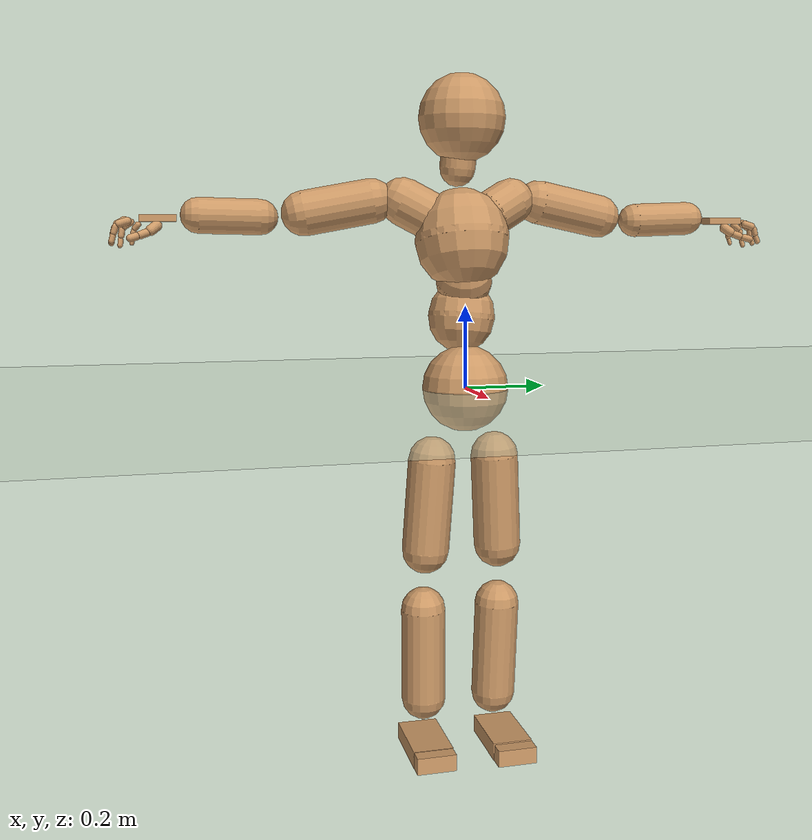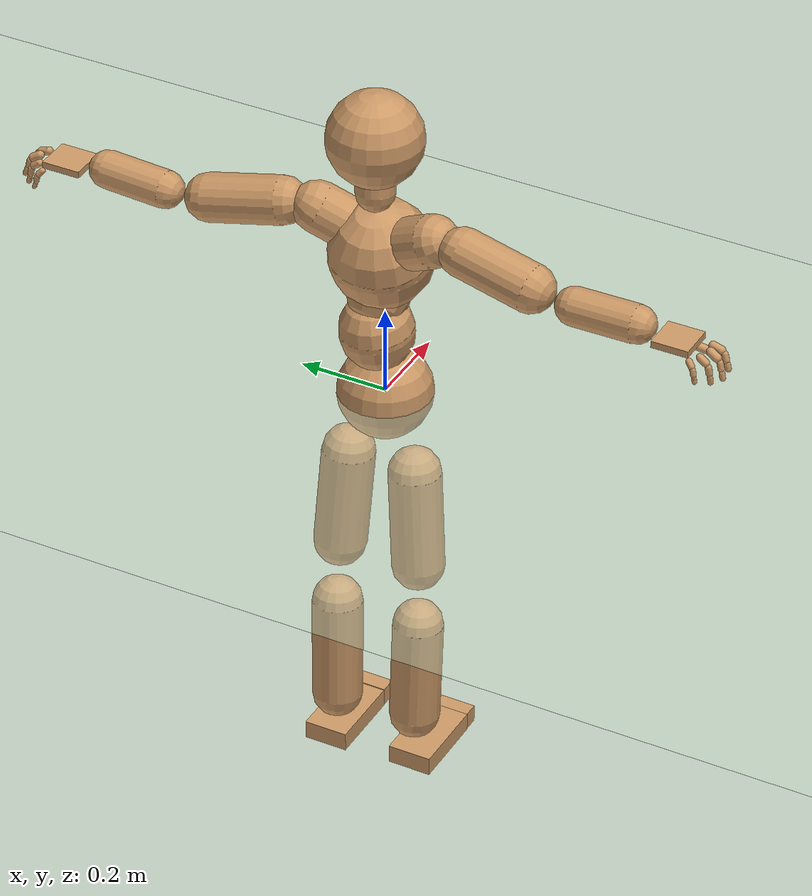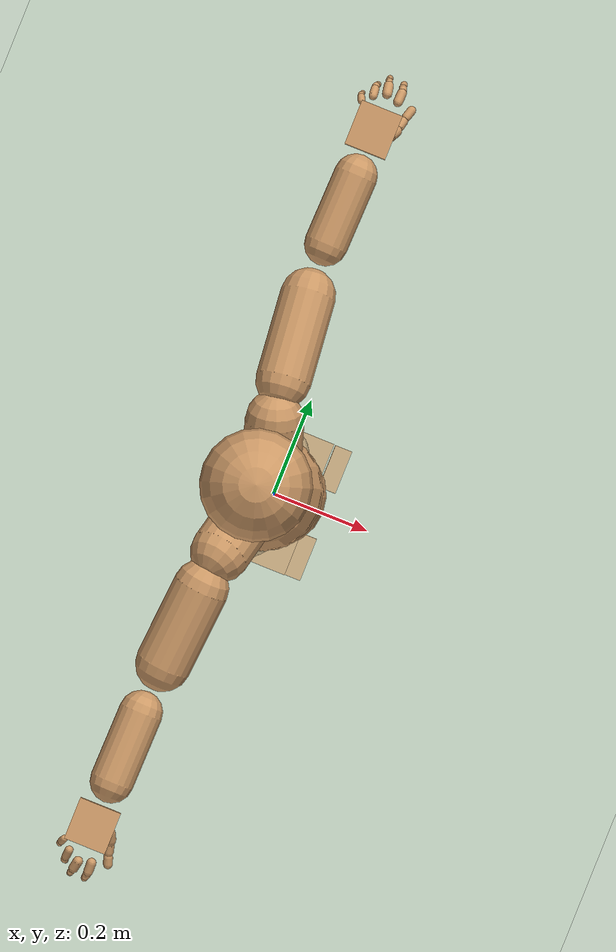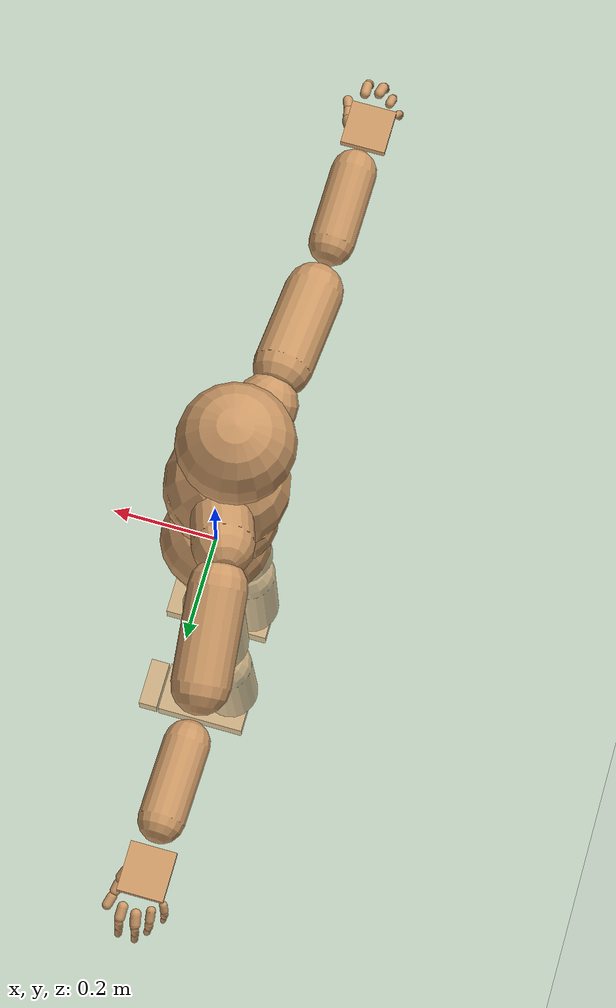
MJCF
<mujoco model="humanoid">
  <compiler coordinate="local"/>
  <default>
    <joint damping="0.0" armature="0.01" stiffness="0.0" limited="true"/>
    <geom conaffinity="1" condim="3" contype="7" margin="0.001" rgba="0.8 0.6 .4 1"/>
  </default>
  <asset>
    <texture type="skybox" builtin="gradient" rgb1=".4 .5 .6" rgb2="0 0 0" width="100" height="100"/>
    <texture builtin="flat" height="1278" mark="cross" markrgb="1 1 1" name="texgeom" random="0.01" rgb1="0.8 0.6 0.4" rgb2="0.8 0.6 0.4" type="cube" width="127"/>
    <texture builtin="checker" height="100" name="texplane" rgb1="0 0 0" rgb2="0.8 0.8 0.8" type="2d" width="100"/>
    <material name="MatPlane" reflectance="0.5" shininess="1" specular="1" texrepeat="60 60" texture="texplane"/>
    <material name="geom" texture="texgeom" texuniform="true"/>
  </asset>
  <worldbody>
    <light cutoff="100" diffuse="1 1 1" dir="-0 0 -1.3" directional="true" exponent="1" pos="0 0 1.3" specular=".1 .1 .1"/>
    <geom conaffinity="1" condim="3" name="floor" pos="0 0 0" rgba="0.8 0.9 0.8 1" size="100 100 .2" type="plane" material="MatPlane"/>
    <body name="Pelvis" pos="0 0 0">
      <freejoint name="Pelvis"/>
      <geom type="sphere" contype="1" conaffinity="1" density="4629.6296296296305" size="0.1056" pos="0.0000 0.0000 0.0000" name="Pelvis"/>
      <body name="L_Hip" pos="-0.0111 0.0758 -0.0952">
        <joint name="L_Hip_x" type="hinge" pos="0 0 0" axis="1 0 0" stiffness="800" damping="80" armature="0.02" range="-180.0000 180.0000"/>
        <joint name="L_Hip_y" type="hinge" pos="0 0 0" axis="0 1 0" stiffness="800" damping="80" armature="0.02" range="-180.0000 180.0000"/>
        <joint name="L_Hip_z" type="hinge" pos="0 0 0" axis="0 0 1" stiffness="800" damping="80" armature="0.02" range="-180.0000 180.0000"/>
        <geom type="capsule" contype="1" conaffinity="1" density="2040.816327" fromto="-0.0049 0.0044 -0.0778 -0.0195 0.0175 -0.3112" size="0.059"/>
        <body name="L_Knee" pos="-0.0244 0.0218 -0.389">
          <joint name="L_Knee_x" type="hinge" pos="0 0 0" axis="1 0 0" stiffness="800" damping="80" armature="0.02" range="-180.0000 180.0000"/>
          <joint name="L_Knee_y" type="hinge" pos="0 0 0" axis="0 1 0" stiffness="800" damping="80" armature="0.02" range="-180.0000 180.0000"/>
          <joint name="L_Knee_z" type="hinge" pos="0 0 0" axis="0 0 1" stiffness="800" damping="80" armature="0.02" range="-180.0000 180.0000"/>
          <geom type="capsule" contype="1" conaffinity="1" density="1234.567901" fromto="-0.0042 -0.0018 -0.0811 -0.0167 -0.0071 -0.3246" size="0.0564"/>
          <body name="L_Ankle" pos="-0.0209 -0.0089 -0.4057">
            <joint name="L_Ankle_x" type="hinge" pos="0 0 0" axis="1 0 0" stiffness="800" damping="80" armature="0.02" range="-180.0000 180.0000"/>
            <joint name="L_Ankle_y" type="hinge" pos="0 0 0" axis="0 1 0" stiffness="800" damping="80" armature="0.02" range="-180.0000 180.0000"/>
            <joint name="L_Ankle_z" type="hinge" pos="0 0 0" axis="0 0 1" stiffness="800" damping="80" armature="0.02" range="-180.0000 180.0000"/>
            <geom type="box" contype="1" conaffinity="1" density="1000" pos="0.0566 0.0115 -0.0234" size="0.0909 0.0502 0.0216" quat="1.0000 0.0000 0.0000 0.0000"/>
            <body name="L_Toe" pos="0.1133 0.0231 -0.0468">
              <joint name="L_Toe_x" type="hinge" pos="0 0 0" axis="1 0 0" stiffness="500" damping="50" armature="0.02" range="-180.0000 180.0000"/>
              <joint name="L_Toe_y" type="hinge" pos="0 0 0" axis="0 1 0" stiffness="500" damping="50" armature="0.02" range="-180.0000 180.0000"/>
              <joint name="L_Toe_z" type="hinge" pos="0 0 0" axis="0 0 1" stiffness="500" damping="50" armature="0.02" range="-180.0000 180.0000"/>
              <geom type="box" contype="1" conaffinity="1" density="1000" pos="0.0576 -0.0115 0.0227" size="0.0194 0.0493 0.0209" quat="1.0000 0.0000 0.0000 0.0000"/>
            </body>
          </body>
        </body>
      </body>
      <body name="R_Hip" pos="-0.0128 -0.0753 -0.1017">
        <joint name="R_Hip_x" type="hinge" pos="0 0 0" axis="1 0 0" stiffness="800" damping="80" armature="0.02" range="-180.0000 180.0000"/>
        <joint name="R_Hip_y" type="hinge" pos="0 0 0" axis="0 1 0" stiffness="800" damping="80" armature="0.02" range="-180.0000 180.0000"/>
        <joint name="R_Hip_z" type="hinge" pos="0 0 0" axis="0 0 1" stiffness="800" damping="80" armature="0.02" range="-180.0000 180.0000"/>
        <geom type="capsule" contype="1" conaffinity="1" density="2040.816327" fromto="-0.0035 -0.0051 -0.0770 -0.0140 -0.0203 -0.3079" size="0.0588"/>
        <body name="R_Knee" pos="-0.0175 -0.0254 -0.3849">
          <joint name="R_Knee_x" type="hinge" pos="0 0 0" axis="1 0 0" stiffness="800" damping="80" armature="0.02" range="-180.0000 180.0000"/>
          <joint name="R_Knee_y" type="hinge" pos="0 0 0" axis="0 1 0" stiffness="800" damping="80" armature="0.02" range="-180.0000 180.0000"/>
          <joint name="R_Knee_z" type="hinge" pos="0 0 0" axis="0 0 1" stiffness="800" damping="80" armature="0.02" range="-180.0000 180.0000"/>
          <geom type="capsule" contype="1" conaffinity="1" density="1234.567901" fromto="-0.0035 0.0006 -0.0794 -0.0139 0.0026 -0.3175" size="0.0564"/>
          <body name="R_Ankle" pos="-0.0174 0.0032 -0.3968">
            <joint name="R_Ankle_x" type="hinge" pos="0 0 0" axis="1 0 0" stiffness="800" damping="80" armature="0.02" range="-180.0000 180.0000"/>
            <joint name="R_Ankle_y" type="hinge" pos="0 0 0" axis="0 1 0" stiffness="800" damping="80" armature="0.02" range="-180.0000 180.0000"/>
            <joint name="R_Ankle_z" type="hinge" pos="0 0 0" axis="0 0 1" stiffness="800" damping="80" armature="0.02" range="-180.0000 180.0000"/>
            <geom type="box" contype="1" conaffinity="1" density="1000" pos="0.0535 -0.0091 -0.0250" size="0.0909 0.0502 0.0216" quat="1.0000 0.0000 0.0000 0.0000"/>
            <body name="R_Toe" pos="0.1071 -0.0181 -0.05">
              <joint name="R_Toe_x" type="hinge" pos="0 0 0" axis="1 0 0" stiffness="500" damping="50" armature="0.02" range="-180.0000 180.0000"/>
              <joint name="R_Toe_y" type="hinge" pos="0 0 0" axis="0 1 0" stiffness="500" damping="50" armature="0.02" range="-180.0000 180.0000"/>
              <joint name="R_Toe_z" type="hinge" pos="0 0 0" axis="0 0 1" stiffness="500" damping="50" armature="0.02" range="-180.0000 180.0000"/>
              <geom type="box" contype="1" conaffinity="1" density="1000" pos="0.0545 0.0091 0.0243" size="0.0194 0.0493 0.0209" quat="1.0000 0.0000 0.0000 0.0000"/>
            </body>
          </body>
        </body>
      </body>
      <body name="Torso" pos="-0.0311 -0.0057 0.111">
        <joint name="Torso_x" type="hinge" pos="0 0 0" axis="1 0 0" stiffness="1000" damping="100" armature="0.02" range="-180.0000 180.0000"/>
        <joint name="Torso_y" type="hinge" pos="0 0 0" axis="0 1 0" stiffness="1000" damping="100" armature="0.02" range="-180.0000 180.0000"/>
        <joint name="Torso_z" type="hinge" pos="0 0 0" axis="0 0 1" stiffness="1000" damping="100" armature="0.02" range="-180.0000 180.0000"/>
        <geom type="capsule" contype="1" conaffinity="1" density="1100" fromto="-0.0054 0.0055 0.0570 -0.0066 0.0067 0.0697" size="0.0817"/>
        <body name="Spine" pos="-0.012 0.0122 0.1267">
          <joint name="Spine_x" type="hinge" pos="0 0 0" axis="1 0 0" stiffness="1000" damping="100" armature="0.02" range="-180.0000 180.0000"/>
          <joint name="Spine_y" type="hinge" pos="0 0 0" axis="0 1 0" stiffness="1000" damping="100" armature="0.02" range="-180.0000 180.0000"/>
          <joint name="Spine_z" type="hinge" pos="0 0 0" axis="0 0 1" stiffness="1000" damping="100" armature="0.02" range="-180.0000 180.0000"/>
          <geom type="capsule" contype="1" conaffinity="1" density="1100" fromto="0.0179 -0.0033 0.0207 0.0218 -0.0040 0.0253" size="0.0686"/>
          <body name="Chest" pos="0.0397 -0.0073 0.046">
            <joint name="Chest_x" type="hinge" pos="0 0 0" axis="1 0 0" stiffness="1000" damping="100" armature="0.02" range="-180.0000 180.0000"/>
            <joint name="Chest_y" type="hinge" pos="0 0 0" axis="0 1 0" stiffness="1000" damping="100" armature="0.02" range="-180.0000 180.0000"/>
            <joint name="Chest_z" type="hinge" pos="0 0 0" axis="0 0 1" stiffness="1000" damping="100" armature="0.02" range="-180.0000 180.0000"/>
            <geom type="capsule" contype="1" conaffinity="1" density="1100" fromto="-0.0173 -0.0012 0.0701 -0.0212 -0.0015 0.0857" size="0.1145"/>
            <body name="Neck" pos="-0.0552 -0.006 0.2172">
              <joint name="Neck_x" type="hinge" pos="0 0 0" axis="1 0 0" stiffness="500" damping="50" armature="0.02" range="-180.0000 180.0000"/>
              <joint name="Neck_y" type="hinge" pos="0 0 0" axis="0 1 0" stiffness="500" damping="50" armature="0.02" range="-180.0000 180.0000"/>
              <joint name="Neck_z" type="hinge" pos="0 0 0" axis="0 0 1" stiffness="500" damping="50" armature="0.02" range="-180.0000 180.0000"/>
              <geom type="capsule" contype="1" conaffinity="1" density="1000" fromto="0.0033 0.0019 0.0295 0.0132 0.0076 0.1180" size="0.0437"/>
              <body name="Head" pos="0.0165 0.0095 0.1475">
                <joint name="Head_x" type="hinge" pos="0 0 0" axis="1 0 0" stiffness="500" damping="50" armature="0.02" range="-180.0000 180.0000"/>
                <joint name="Head_y" type="hinge" pos="0 0 0" axis="0 1 0" stiffness="500" damping="50" armature="0.02" range="-180.0000 180.0000"/>
                <joint name="Head_z" type="hinge" pos="0 0 0" axis="0 0 1" stiffness="500" damping="50" armature="0.02" range="-180.0000 180.0000"/>
                <geom type="sphere" contype="1" conaffinity="1" density="1000" size="0.1054" pos="0.0000 0.0000 0.0000" name="Head"/>
              </body>
            </body>
            <body name="L_Thorax" pos="-0.0266 0.0574 0.1273">
              <joint name="L_Thorax_x" type="hinge" pos="0 0 0" axis="1 0 0" stiffness="500" damping="50" armature="0.02" range="-180.0000 180.0000"/>
              <joint name="L_Thorax_y" type="hinge" pos="0 0 0" axis="0 1 0" stiffness="500" damping="50" armature="0.02" range="-180.0000 180.0000"/>
              <joint name="L_Thorax_z" type="hinge" pos="0 0 0" axis="0 0 1" stiffness="500" damping="50" armature="0.02" range="-180.0000 180.0000"/>
              <geom type="capsule" contype="1" conaffinity="1" density="1000" fromto="-0.0063 0.0186 0.0105 -0.0250 0.0743 0.0420" size="0.0564"/>
              <body name="L_Shoulder" pos="-0.0313 0.0928 0.0525">
                <joint name="L_Shoulder_x" type="hinge" pos="0 0 0" axis="1 0 0" stiffness="500" damping="50" armature="0.02" range="-180.0000 180.0000"/>
                <joint name="L_Shoulder_y" type="hinge" pos="0 0 0" axis="0 1 0" stiffness="500" damping="50" armature="0.02" range="-180.0000 180.0000"/>
                <joint name="L_Shoulder_z" type="hinge" pos="0 0 0" axis="0 0 1" stiffness="500" damping="50" armature="0.02" range="-180.0000 180.0000"/>
                <geom type="capsule" contype="1" conaffinity="1" density="1000" fromto="-0.0057 0.0560 -0.0112 -0.0228 0.2241 -0.0448" size="0.0533"/>
                <body name="L_Elbow" pos="-0.0285 0.2802 -0.056">
                  <joint name="L_Elbow_x" type="hinge" pos="0 0 0" axis="1 0 0" stiffness="500" damping="50" armature="0.02" range="-180.0000 180.0000"/>
                  <joint name="L_Elbow_y" type="hinge" pos="0 0 0" axis="0 1 0" stiffness="500" damping="50" armature="0.02" range="-180.0000 180.0000"/>
                  <joint name="L_Elbow_z" type="hinge" pos="0 0 0" axis="0 0 1" stiffness="500" damping="50" armature="0.02" range="-180.0000 180.0000"/>
                  <geom type="capsule" contype="1" conaffinity="1" density="1000" fromto="0.0012 0.0473 0.0019 0.0047 0.1894 0.0075" size="0.0418"/>
                  <body name="L_Wrist" pos="0.0059 0.2367 0.0094">
                    <joint name="L_Wrist_x" type="hinge" pos="0 0 0" axis="1 0 0" stiffness="300" damping="30" armature="0.02" range="-180.0000 180.0000"/>
                    <joint name="L_Wrist_y" type="hinge" pos="0 0 0" axis="0 1 0" stiffness="300" damping="30" armature="0.02" range="-180.0000 180.0000"/>
                    <joint name="L_Wrist_z" type="hinge" pos="0 0 0" axis="0 0 1" stiffness="300" damping="30" armature="0.02" range="-180.0000 180.0000"/>
                    <geom type="box" contype="1" conaffinity="1" density="1000" pos="-0.0022 0.0456 -0.0084" size="0.0414 0.0444 0.0076" quat="1.0000 0.0000 0.0000 0.0000"/>
                    <body name="L_Index1" pos="0.0212 0.107 -0.0141">
                      <joint name="L_Index1_x" type="hinge" pos="0 0 0" axis="1 0 0" stiffness="100" damping="10" armature="0.02" range="-55.6250 55.6250"/>
                      <joint name="L_Index1_y" type="hinge" pos="0 0 0" axis="0 1 0" stiffness="100" damping="10" armature="0.02" range="-5.6250 5.6250"/>
                      <joint name="L_Index1_z" type="hinge" pos="0 0 0" axis="0 0 1" stiffness="100" damping="10" armature="0.02" range="-5.6250 5.6250"/>
                      <geom type="capsule" contype="1" conaffinity="1" density="1000" fromto="0.0001 0.0061 -0.0021 0.0006 0.0246 -0.0082" size="0.0093"/>
                      <body name="L_Index2" pos="0.0007 0.0307 -0.0103">
                        <joint name="L_Index2_x" type="hinge" pos="0 0 0" axis="1 0 0" stiffness="100" damping="10" armature="0.02" range="-55.6250 55.6250"/>
                        <joint name="L_Index2_y" type="hinge" pos="0 0 0" axis="0 1 0" stiffness="100" damping="10" armature="0.02" range="-5.6250 5.6250"/>
                        <joint name="L_Index2_z" type="hinge" pos="0 0 0" axis="0 0 1" stiffness="100" damping="10" armature="0.02" range="-5.6250 5.6250"/>
                        <geom type="capsule" contype="1" conaffinity="1" density="1000" fromto="-0.0004 0.0015 -0.0043 -0.0017 0.0059 -0.0170" size="0.0076"/>
                        <body name="L_Index3" pos="-0.0021 0.0074 -0.0213">
                          <joint name="L_Index3_x" type="hinge" pos="0 0 0" axis="1 0 0" stiffness="100" damping="10" armature="0.02" range="-90.0000 5.6250"/>
                          <joint name="L_Index3_y" type="hinge" pos="0 0 0" axis="0 1 0" stiffness="100" damping="10" armature="0.02" range="-5.6250 5.6250"/>
                          <joint name="L_Index3_z" type="hinge" pos="0 0 0" axis="0 0 1" stiffness="100" damping="10" armature="0.02" range="-5.6250 5.6250"/>
                          <geom type="capsule" contype="1" conaffinity="1" density="1000" fromto="-0.0000 0.0019 -0.0039 -0.0001 0.0075 -0.0154" size="0.0067"/>
                        </body>
                      </body>
                    </body>
                    <body name="L_Middle1" pos="-0.0028 0.1143 -0.0116">
                      <joint name="L_Middle1_x" type="hinge" pos="0 0 0" axis="1 0 0" stiffness="100" damping="10" armature="0.02" range="-55.6250 55.6250"/>
                      <joint name="L_Middle1_y" type="hinge" pos="0 0 0" axis="0 1 0" stiffness="100" damping="10" armature="0.02" range="-5.6250 5.6250"/>
                      <joint name="L_Middle1_z" type="hinge" pos="0 0 0" axis="0 0 1" stiffness="100" damping="10" armature="0.02" range="-5.6250 5.6250"/>
                      <geom type="capsule" contype="1" conaffinity="1" density="1000" fromto="-0.0010 0.0054 -0.0029 -0.0039 0.0214 -0.0116" size="0.0096"/>
                      <body name="L_Middle2" pos="-0.0048 0.0268 -0.0145">
                        <joint name="L_Middle2_x" type="hinge" pos="0 0 0" axis="1 0 0" stiffness="100" damping="10" armature="0.02" range="-55.6250 55.6250"/>
                        <joint name="L_Middle2_y" type="hinge" pos="0 0 0" axis="0 1 0" stiffness="100" damping="10" armature="0.02" range="-5.6250 5.6250"/>
                        <joint name="L_Middle2_z" type="hinge" pos="0 0 0" axis="0 0 1" stiffness="100" damping="10" armature="0.02" range="-5.6250 5.6250"/>
                        <geom type="capsule" contype="1" conaffinity="1" density="1000" fromto="-0.0004 0.0013 -0.0046 -0.0017 0.0051 -0.0184" size="0.0071"/>
                        <body name="L_Middle3" pos="-0.0021 0.0063 -0.023">
                          <joint name="L_Middle3_x" type="hinge" pos="0 0 0" axis="1 0 0" stiffness="100" damping="10" armature="0.02" range="-90.0000 5.6250"/>
                          <joint name="L_Middle3_y" type="hinge" pos="0 0 0" axis="0 1 0" stiffness="100" damping="10" armature="0.02" range="-5.6250 5.6250"/>
                          <joint name="L_Middle3_z" type="hinge" pos="0 0 0" axis="0 0 1" stiffness="100" damping="10" armature="0.02" range="-5.6250 5.6250"/>
                          <geom type="capsule" contype="1" conaffinity="1" density="1000" fromto="-0.0000 0.0017 -0.0042 -0.0001 0.0067 -0.0168" size="0.0064"/>
                        </body>
                      </body>
                    </body>
                    <body name="L_Pinky1" pos="-0.0428 0.088 -0.0204">
                      <joint name="L_Pinky1_x" type="hinge" pos="0 0 0" axis="1 0 0" stiffness="100" damping="10" armature="0.02" range="-55.6250 55.6250"/>
                      <joint name="L_Pinky1_y" type="hinge" pos="0 0 0" axis="0 1 0" stiffness="100" damping="10" armature="0.02" range="-5.6250 5.6250"/>
                      <joint name="L_Pinky1_z" type="hinge" pos="0 0 0" axis="0 0 1" stiffness="100" damping="10" armature="0.02" range="-5.6250 5.6250"/>
                      <geom type="capsule" contype="1" conaffinity="1" density="1000" fromto="-0.0012 0.0024 -0.0028 -0.0047 0.0097 -0.0110" size="0.0071"/>
                      <body name="L_Pinky2" pos="-0.0058 0.0122 -0.0138">
                        <joint name="L_Pinky2_x" type="hinge" pos="0 0 0" axis="1 0 0" stiffness="100" damping="10" armature="0.02" range="-55.6250 55.6250"/>
                        <joint name="L_Pinky2_y" type="hinge" pos="0 0 0" axis="0 1 0" stiffness="100" damping="10" armature="0.02" range="-5.6250 5.6250"/>
                        <joint name="L_Pinky2_z" type="hinge" pos="0 0 0" axis="0 0 1" stiffness="100" damping="10" armature="0.02" range="-5.6250 5.6250"/>
                        <geom type="capsule" contype="1" conaffinity="1" density="1000" fromto="-0.0001 0.0008 -0.0037 -0.0005 0.0033 -0.0149" size="0.0064"/>
                        <body name="L_Pinky3" pos="-0.0006 0.0042 -0.0186">
                          <joint name="L_Pinky3_x" type="hinge" pos="0 0 0" axis="1 0 0" stiffness="100" damping="10" armature="0.02" range="-90.0000 5.6250"/>
                          <joint name="L_Pinky3_y" type="hinge" pos="0 0 0" axis="0 1 0" stiffness="100" damping="10" armature="0.02" range="-5.6250 5.6250"/>
                          <joint name="L_Pinky3_z" type="hinge" pos="0 0 0" axis="0 0 1" stiffness="100" damping="10" armature="0.02" range="-5.6250 5.6250"/>
                          <geom type="capsule" contype="1" conaffinity="1" density="1000" fromto="0.0003 0.0012 -0.0033 0.0011 0.0049 -0.0133" size="0.0051"/>
                        </body>
                      </body>
                    </body>
                    <body name="L_Ring1" pos="-0.0267 0.1018 -0.0147">
                      <joint name="L_Ring1_x" type="hinge" pos="0 0 0" axis="1 0 0" stiffness="100" damping="10" armature="0.02" range="-55.6250 55.6250"/>
                      <joint name="L_Ring1_y" type="hinge" pos="0 0 0" axis="0 1 0" stiffness="100" damping="10" armature="0.02" range="-5.6250 5.6250"/>
                      <joint name="L_Ring1_z" type="hinge" pos="0 0 0" axis="0 0 1" stiffness="100" damping="10" armature="0.02" range="-5.6250 5.6250"/>
                      <geom type="capsule" contype="1" conaffinity="1" density="1000" fromto="-0.0005 0.0048 -0.0032 -0.0019 0.0191 -0.0126" size="0.0082"/>
                      <body name="L_Ring2" pos="-0.0023 0.0239 -0.0158">
                        <joint name="L_Ring2_x" type="hinge" pos="0 0 0" axis="1 0 0" stiffness="100" damping="10" armature="0.02" range="-55.6250 55.6250"/>
                        <joint name="L_Ring2_y" type="hinge" pos="0 0 0" axis="0 1 0" stiffness="100" damping="10" armature="0.02" range="-5.6250 5.6250"/>
                        <joint name="L_Ring2_z" type="hinge" pos="0 0 0" axis="0 0 1" stiffness="100" damping="10" armature="0.02" range="-5.6250 5.6250"/>
                        <geom type="capsule" contype="1" conaffinity="1" density="1000" fromto="0.0001 0.0009 -0.0047 0.0003 0.0036 -0.0187" size="0.0073"/>
                        <body name="L_Ring3" pos="0.0004 0.0045 -0.0234">
                          <joint name="L_Ring3_x" type="hinge" pos="0 0 0" axis="1 0 0" stiffness="100" damping="10" armature="0.02" range="-90.0000 5.6250"/>
                          <joint name="L_Ring3_y" type="hinge" pos="0 0 0" axis="0 1 0" stiffness="100" damping="10" armature="0.02" range="-5.6250 5.6250"/>
                          <joint name="L_Ring3_z" type="hinge" pos="0 0 0" axis="0 0 1" stiffness="100" damping="10" armature="0.02" range="-5.6250 5.6250"/>
                          <geom type="capsule" contype="1" conaffinity="1" density="1000" fromto="0.0005 0.0013 -0.0043 0.0019 0.0052 -0.0171" size="0.0061"/>
                        </body>
                      </body>
                    </body>
                    <body name="L_Thumb1" pos="0.0287 0.0444 -0.023">
                      <joint name="L_Thumb1_x" type="hinge" pos="0 0 0" axis="1 0 0" stiffness="100" damping="10" armature="0.02" range="-55.6250 55.6250"/>
                      <joint name="L_Thumb1_y" type="hinge" pos="0 0 0" axis="0 1 0" stiffness="100" damping="10" armature="0.02" range="-55.6250 55.6250"/>
                      <joint name="L_Thumb1_z" type="hinge" pos="0 0 0" axis="0 0 1" stiffness="100" damping="10" armature="0.02" range="-55.6250 55.6250"/>
                      <geom type="capsule" contype="1" conaffinity="1" density="1000" fromto="0.0022 0.0044 -0.0035 0.0089 0.0176 -0.0139" size="0.0123"/>
                      <body name="L_Thumb2" pos="0.0112 0.022 -0.0174">
                        <joint name="L_Thumb2_x" type="hinge" pos="0 0 0" axis="1 0 0" stiffness="100" damping="10" armature="0.02" range="-5.6250 5.6250"/>
                        <joint name="L_Thumb2_y" type="hinge" pos="0 0 0" axis="0 1 0" stiffness="100" damping="10" armature="0.02" range="-5.6250 5.6250"/>
                        <joint name="L_Thumb2_z" type="hinge" pos="0 0 0" axis="0 0 1" stiffness="100" damping="10" armature="0.02" range="-5.6250 5.6250"/>
                        <geom type="capsule" contype="1" conaffinity="1" density="1000" fromto="0.0011 0.0048 -0.0018 0.0044 0.0191 -0.0071" size="0.0093"/>
                        <body name="L_Thumb3" pos="0.0055 0.0239 -0.0088">
                          <joint name="L_Thumb3_x" type="hinge" pos="0 0 0" axis="1 0 0" stiffness="100" damping="10" armature="0.02" range="-90.0000 5.6250"/>
                          <joint name="L_Thumb3_y" type="hinge" pos="0 0 0" axis="0 1 0" stiffness="100" damping="10" armature="0.02" range="-5.6250 5.6250"/>
                          <joint name="L_Thumb3_z" type="hinge" pos="0 0 0" axis="0 0 1" stiffness="100" damping="10" armature="0.02" range="-5.6250 5.6250"/>
                          <geom type="capsule" contype="1" conaffinity="1" density="1000" fromto="0.0015 0.0052 -0.0014 0.0060 0.0207 -0.0055" size="0.0088"/>
                        </body>
                      </body>
                    </body>
                  </body>
                </body>
              </body>
            </body>
            <body name="R_Thorax" pos="-0.0337 -0.0595 0.1228">
              <joint name="R_Thorax_x" type="hinge" pos="0 0 0" axis="1 0 0" stiffness="500" damping="50" armature="0.02" range="-180.0000 180.0000"/>
              <joint name="R_Thorax_y" type="hinge" pos="0 0 0" axis="0 1 0" stiffness="500" damping="50" armature="0.02" range="-180.0000 180.0000"/>
              <joint name="R_Thorax_z" type="hinge" pos="0 0 0" axis="0 0 1" stiffness="500" damping="50" armature="0.02" range="-180.0000 180.0000"/>
              <geom type="capsule" contype="1" conaffinity="1" density="1000" fromto="-0.0048 -0.0201 0.0110 -0.0192 -0.0804 0.0439" size="0.0576"/>
              <body name="R_Shoulder" pos="-0.024 -0.1005 0.0549">
                <joint name="R_Shoulder_x" type="hinge" pos="0 0 0" axis="1 0 0" stiffness="500" damping="50" armature="0.02" range="-180.0000 180.0000"/>
                <joint name="R_Shoulder_y" type="hinge" pos="0 0 0" axis="0 1 0" stiffness="500" damping="50" armature="0.02" range="-180.0000 180.0000"/>
                <joint name="R_Shoulder_z" type="hinge" pos="0 0 0" axis="0 0 1" stiffness="500" damping="50" armature="0.02" range="-180.0000 180.0000"/>
                <geom type="capsule" contype="1" conaffinity="1" density="1000" fromto="-0.0042 -0.0541 -0.0101 -0.0167 -0.2164 -0.0402" size="0.0538"/>
                <body name="R_Elbow" pos="-0.0208 -0.2705 -0.0503">
                  <joint name="R_Elbow_x" type="hinge" pos="0 0 0" axis="1 0 0" stiffness="500" damping="50" armature="0.02" range="-180.0000 180.0000"/>
                  <joint name="R_Elbow_y" type="hinge" pos="0 0 0" axis="0 1 0" stiffness="500" damping="50" armature="0.02" range="-180.0000 180.0000"/>
                  <joint name="R_Elbow_z" type="hinge" pos="0 0 0" axis="0 0 1" stiffness="500" damping="50" armature="0.02" range="-180.0000 180.0000"/>
                  <geom type="capsule" contype="1" conaffinity="1" density="1000" fromto="-0.0008 -0.0474 0.0010 -0.0030 -0.1897 0.0040" size="0.042"/>
                  <body name="R_Wrist" pos="-0.0038 -0.2372 0.005">
                    <joint name="R_Wrist_x" type="hinge" pos="0 0 0" axis="1 0 0" stiffness="300" damping="30" armature="0.02" range="-180.0000 180.0000"/>
                    <joint name="R_Wrist_y" type="hinge" pos="0 0 0" axis="0 1 0" stiffness="300" damping="30" armature="0.02" range="-180.0000 180.0000"/>
                    <joint name="R_Wrist_z" type="hinge" pos="0 0 0" axis="0 0 1" stiffness="300" damping="30" armature="0.02" range="-180.0000 180.0000"/>
                    <geom type="box" contype="1" conaffinity="1" density="1000" pos="-0.0014 -0.0449 -0.0080" size="0.0414 0.0416 0.0078" quat="1.0000 0.0000 0.0000 0.0000"/>
                    <body name="R_Index1" pos="0.0229 -0.1057 -0.0132">
                      <joint name="R_Index1_x" type="hinge" pos="0 0 0" axis="1 0 0" stiffness="100" damping="10" armature="0.02" range="-55.6250 55.6250"/>
                      <joint name="R_Index1_y" type="hinge" pos="0 0 0" axis="0 1 0" stiffness="100" damping="10" armature="0.02" range="-5.6250 5.6250"/>
                      <joint name="R_Index1_z" type="hinge" pos="0 0 0" axis="0 0 1" stiffness="100" damping="10" armature="0.02" range="-5.6250 5.6250"/>
                      <geom type="capsule" contype="1" conaffinity="1" density="1000" fromto="0.0001 -0.0061 -0.0021 0.0006 -0.0246 -0.0082" size="0.0093"/>
                      <body name="R_Index2" pos="0.0007 -0.0307 -0.0103">
                        <joint name="R_Index2_x" type="hinge" pos="0 0 0" axis="1 0 0" stiffness="100" damping="10" armature="0.02" range="-55.6250 55.6250"/>
                        <joint name="R_Index2_y" type="hinge" pos="0 0 0" axis="0 1 0" stiffness="100" damping="10" armature="0.02" range="-5.6250 5.6250"/>
                        <joint name="R_Index2_z" type="hinge" pos="0 0 0" axis="0 0 1" stiffness="100" damping="10" armature="0.02" range="-5.6250 5.6250"/>
                        <geom type="capsule" contype="1" conaffinity="1" density="1000" fromto="-0.0004 -0.0015 -0.0043 -0.0017 -0.0059 -0.0170" size="0.0076"/>
                        <body name="R_Index3" pos="-0.0021 -0.0074 -0.0213">
                          <joint name="R_Index3_x" type="hinge" pos="0 0 0" axis="1 0 0" stiffness="100" damping="10" armature="0.02" range="-5.6250 90.0000"/>
                          <joint name="R_Index3_y" type="hinge" pos="0 0 0" axis="0 1 0" stiffness="100" damping="10" armature="0.02" range="-5.6250 5.6250"/>
                          <joint name="R_Index3_z" type="hinge" pos="0 0 0" axis="0 0 1" stiffness="100" damping="10" armature="0.02" range="-5.6250 5.6250"/>
                          <geom type="capsule" contype="1" conaffinity="1" density="1000" fromto="-0.0000 -0.0011 -0.0039 -0.0001 -0.0043 -0.0154" size="0.0068"/>
                        </body>
                      </body>
                    </body>
                    <body name="R_Middle1" pos="-0.0011 -0.113 -0.0107">
                      <joint name="R_Middle1_x" type="hinge" pos="0 0 0" axis="1 0 0" stiffness="100" damping="10" armature="0.02" range="-55.6250 55.6250"/>
                      <joint name="R_Middle1_y" type="hinge" pos="0 0 0" axis="0 1 0" stiffness="100" damping="10" armature="0.02" range="-5.6250 5.6250"/>
                      <joint name="R_Middle1_z" type="hinge" pos="0 0 0" axis="0 0 1" stiffness="100" damping="10" armature="0.02" range="-5.6250 5.6250"/>
                      <geom type="capsule" contype="1" conaffinity="1" density="1000" fromto="-0.0010 -0.0054 -0.0029 -0.0039 -0.0214 -0.0116" size="0.0096"/>
                      <body name="R_Middle2" pos="-0.0048 -0.0268 -0.0145">
                        <joint name="R_Middle2_x" type="hinge" pos="0 0 0" axis="1 0 0" stiffness="100" damping="10" armature="0.02" range="-55.6250 55.6250"/>
                        <joint name="R_Middle2_y" type="hinge" pos="0 0 0" axis="0 1 0" stiffness="100" damping="10" armature="0.02" range="-5.6250 5.6250"/>
                        <joint name="R_Middle2_z" type="hinge" pos="0 0 0" axis="0 0 1" stiffness="100" damping="10" armature="0.02" range="-5.6250 5.6250"/>
                        <geom type="capsule" contype="1" conaffinity="1" density="1000" fromto="-0.0004 -0.0013 -0.0046 -0.0017 -0.0051 -0.0184" size="0.0071"/>
                        <body name="R_Middle3" pos="-0.0021 -0.0063 -0.023">
                          <joint name="R_Middle3_x" type="hinge" pos="0 0 0" axis="1 0 0" stiffness="100" damping="10" armature="0.02" range="-5.6250 90.0000"/>
                          <joint name="R_Middle3_y" type="hinge" pos="0 0 0" axis="0 1 0" stiffness="100" damping="10" armature="0.02" range="-5.6250 5.6250"/>
                          <joint name="R_Middle3_z" type="hinge" pos="0 0 0" axis="0 0 1" stiffness="100" damping="10" armature="0.02" range="-5.6250 5.6250"/>
                          <geom type="capsule" contype="1" conaffinity="1" density="1000" fromto="-0.0000 -0.0009 -0.0042 -0.0001 -0.0035 -0.0168" size="0.0064"/>
                        </body>
                      </body>
                    </body>
                    <body name="R_Pinky1" pos="-0.0411 -0.0867 -0.0196">
                      <joint name="R_Pinky1_x" type="hinge" pos="0 0 0" axis="1 0 0" stiffness="100" damping="10" armature="0.02" range="-55.6250 55.6250"/>
                      <joint name="R_Pinky1_y" type="hinge" pos="0 0 0" axis="0 1 0" stiffness="100" damping="10" armature="0.02" range="-5.6250 5.6250"/>
                      <joint name="R_Pinky1_z" type="hinge" pos="0 0 0" axis="0 0 1" stiffness="100" damping="10" armature="0.02" range="-5.6250 5.6250"/>
                      <geom type="capsule" contype="1" conaffinity="1" density="1000" fromto="-0.0012 -0.0024 -0.0028 -0.0047 -0.0097 -0.0110" size="0.0071"/>
                      <body name="R_Pinky2" pos="-0.0058 -0.0122 -0.0138">
                        <joint name="R_Pinky2_x" type="hinge" pos="0 0 0" axis="1 0 0" stiffness="100" damping="10" armature="0.02" range="-55.6250 55.6250"/>
                        <joint name="R_Pinky2_y" type="hinge" pos="0 0 0" axis="0 1 0" stiffness="100" damping="10" armature="0.02" range="-5.6250 5.6250"/>
                        <joint name="R_Pinky2_z" type="hinge" pos="0 0 0" axis="0 0 1" stiffness="100" damping="10" armature="0.02" range="-5.6250 5.6250"/>
                        <geom type="capsule" contype="1" conaffinity="1" density="1000" fromto="-0.0001 -0.0008 -0.0037 -0.0005 -0.0033 -0.0149" size="0.0064"/>
                        <body name="R_Pinky3" pos="-0.0006 -0.0042 -0.0186">
                          <joint name="R_Pinky3_x" type="hinge" pos="0 0 0" axis="1 0 0" stiffness="100" damping="10" armature="0.02" range="-5.6250 90.0000"/>
                          <joint name="R_Pinky3_y" type="hinge" pos="0 0 0" axis="0 1 0" stiffness="100" damping="10" armature="0.02" range="-5.6250 5.6250"/>
                          <joint name="R_Pinky3_z" type="hinge" pos="0 0 0" axis="0 0 1" stiffness="100" damping="10" armature="0.02" range="-5.6250 5.6250"/>
                          <geom type="capsule" contype="1" conaffinity="1" density="1000" fromto="0.0003 -0.0004 -0.0033 0.0011 -0.0017 -0.0133" size="0.0052"/>
                        </body>
                      </body>
                    </body>
                    <body name="R_Ring1" pos="-0.025 -0.1005 -0.0139">
                      <joint name="R_Ring1_x" type="hinge" pos="0 0 0" axis="1 0 0" stiffness="100" damping="10" armature="0.02" range="-55.6250 55.6250"/>
                      <joint name="R_Ring1_y" type="hinge" pos="0 0 0" axis="0 1 0" stiffness="100" damping="10" armature="0.02" range="-5.6250 5.6250"/>
                      <joint name="R_Ring1_z" type="hinge" pos="0 0 0" axis="0 0 1" stiffness="100" damping="10" armature="0.02" range="-5.6250 5.6250"/>
                      <geom type="capsule" contype="1" conaffinity="1" density="1000" fromto="-0.0005 -0.0048 -0.0032 -0.0019 -0.0191 -0.0126" size="0.0082"/>
                      <body name="R_Ring2" pos="-0.0023 -0.0238 -0.0158">
                        <joint name="R_Ring2_x" type="hinge" pos="0 0 0" axis="1 0 0" stiffness="100" damping="10" armature="0.02" range="-55.6250 55.6250"/>
                        <joint name="R_Ring2_y" type="hinge" pos="0 0 0" axis="0 1 0" stiffness="100" damping="10" armature="0.02" range="-5.6250 5.6250"/>
                        <joint name="R_Ring2_z" type="hinge" pos="0 0 0" axis="0 0 1" stiffness="100" damping="10" armature="0.02" range="-5.6250 5.6250"/>
                        <geom type="capsule" contype="1" conaffinity="1" density="1000" fromto="0.0001 -0.0009 -0.0047 0.0003 -0.0036 -0.0187" size="0.0073"/>
                        <body name="R_Ring3" pos="0.0004 -0.0045 -0.0234">
                          <joint name="R_Ring3_x" type="hinge" pos="0 0 0" axis="1 0 0" stiffness="100" damping="10" armature="0.02" range="-5.6250 90.0000"/>
                          <joint name="R_Ring3_y" type="hinge" pos="0 0 0" axis="0 1 0" stiffness="100" damping="10" armature="0.02" range="-5.6250 5.6250"/>
                          <joint name="R_Ring3_z" type="hinge" pos="0 0 0" axis="0 0 1" stiffness="100" damping="10" armature="0.02" range="-5.6250 5.6250"/>
                          <geom type="capsule" contype="1" conaffinity="1" density="1000" fromto="0.0005 -0.0005 -0.0043 0.0019 -0.0020 -0.0171" size="0.0061"/>
                        </body>
                      </body>
                    </body>
                    <body name="R_Thumb1" pos="0.0304 -0.043 -0.0222">
                      <joint name="R_Thumb1_x" type="hinge" pos="0 0 0" axis="1 0 0" stiffness="100" damping="10" armature="0.02" range="-55.6250 55.6250"/>
                      <joint name="R_Thumb1_y" type="hinge" pos="0 0 0" axis="0 1 0" stiffness="100" damping="10" armature="0.02" range="-55.6250 55.6250"/>
                      <joint name="R_Thumb1_z" type="hinge" pos="0 0 0" axis="0 0 1" stiffness="100" damping="10" armature="0.02" range="-55.6250 55.6250"/>
                      <geom type="capsule" contype="1" conaffinity="1" density="1000" fromto="0.0022 -0.0044 -0.0035 0.0089 -0.0176 -0.0139" size="0.0123"/>
                      <body name="R_Thumb2" pos="0.0112 -0.022 -0.0174">
                        <joint name="R_Thumb2_x" type="hinge" pos="0 0 0" axis="1 0 0" stiffness="100" damping="10" armature="0.02" range="-5.6250 5.6250"/>
                        <joint name="R_Thumb2_y" type="hinge" pos="0 0 0" axis="0 1 0" stiffness="100" damping="10" armature="0.02" range="-5.6250 5.6250"/>
                        <joint name="R_Thumb2_z" type="hinge" pos="0 0 0" axis="0 0 1" stiffness="100" damping="10" armature="0.02" range="-5.6250 5.6250"/>
                        <geom type="capsule" contype="1" conaffinity="1" density="1000" fromto="0.0011 -0.0048 -0.0018 0.0044 -0.0191 -0.0071" size="0.0093"/>
                        <body name="R_Thumb3" pos="0.0055 -0.0239 -0.0088">
                          <joint name="R_Thumb3_x" type="hinge" pos="0 0 0" axis="1 0 0" stiffness="100" damping="10" armature="0.02" range="-5.6250 90.0000"/>
                          <joint name="R_Thumb3_y" type="hinge" pos="0 0 0" axis="0 1 0" stiffness="100" damping="10" armature="0.02" range="-5.6250 5.6250"/>
                          <joint name="R_Thumb3_z" type="hinge" pos="0 0 0" axis="0 0 1" stiffness="100" damping="10" armature="0.02" range="-5.6250 5.6250"/>
                          <geom type="capsule" contype="1" conaffinity="1" density="1000" fromto="0.0015 -0.0044 -0.0014 0.0060 -0.0175 -0.0055" size="0.0091"/>
                        </body>
                      </body>
                    </body>
                  </body>
                </body>
              </body>
            </body>
          </body>
        </body>
      </body>
    </body>
  </worldbody>
  <actuator>
    <motor name="L_Hip_x" joint="L_Hip_x" gear="1"/>
    <motor name="L_Hip_y" joint="L_Hip_y" gear="1"/>
    <motor name="L_Hip_z" joint="L_Hip_z" gear="1"/>
    <motor name="L_Knee_x" joint="L_Knee_x" gear="1"/>
    <motor name="L_Knee_y" joint="L_Knee_y" gear="1"/>
    <motor name="L_Knee_z" joint="L_Knee_z" gear="1"/>
    <motor name="L_Ankle_x" joint="L_Ankle_x" gear="1"/>
    <motor name="L_Ankle_y" joint="L_Ankle_y" gear="1"/>
    <motor name="L_Ankle_z" joint="L_Ankle_z" gear="1"/>
    <motor name="L_Toe_x" joint="L_Toe_x" gear="1"/>
    <motor name="L_Toe_y" joint="L_Toe_y" gear="1"/>
    <motor name="L_Toe_z" joint="L_Toe_z" gear="1"/>
    <motor name="R_Hip_x" joint="R_Hip_x" gear="1"/>
    <motor name="R_Hip_y" joint="R_Hip_y" gear="1"/>
    <motor name="R_Hip_z" joint="R_Hip_z" gear="1"/>
    <motor name="R_Knee_x" joint="R_Knee_x" gear="1"/>
    <motor name="R_Knee_y" joint="R_Knee_y" gear="1"/>
    <motor name="R_Knee_z" joint="R_Knee_z" gear="1"/>
    <motor name="R_Ankle_x" joint="R_Ankle_x" gear="1"/>
    <motor name="R_Ankle_y" joint="R_Ankle_y" gear="1"/>
    <motor name="R_Ankle_z" joint="R_Ankle_z" gear="1"/>
    <motor name="R_Toe_x" joint="R_Toe_x" gear="1"/>
    <motor name="R_Toe_y" joint="R_Toe_y" gear="1"/>
    <motor name="R_Toe_z" joint="R_Toe_z" gear="1"/>
    <motor name="Torso_x" joint="Torso_x" gear="1"/>
    <motor name="Torso_y" joint="Torso_y" gear="1"/>
    <motor name="Torso_z" joint="Torso_z" gear="1"/>
    <motor name="Spine_x" joint="Spine_x" gear="1"/>
    <motor name="Spine_y" joint="Spine_y" gear="1"/>
    <motor name="Spine_z" joint="Spine_z" gear="1"/>
    <motor name="Chest_x" joint="Chest_x" gear="1"/>
    <motor name="Chest_y" joint="Chest_y" gear="1"/>
    <motor name="Chest_z" joint="Chest_z" gear="1"/>
    <motor name="Neck_x" joint="Neck_x" gear="1"/>
    <motor name="Neck_y" joint="Neck_y" gear="1"/>
    <motor name="Neck_z" joint="Neck_z" gear="1"/>
    <motor name="Head_x" joint="Head_x" gear="1"/>
    <motor name="Head_y" joint="Head_y" gear="1"/>
    <motor name="Head_z" joint="Head_z" gear="1"/>
    <motor name="L_Thorax_x" joint="L_Thorax_x" gear="1"/>
    <motor name="L_Thorax_y" joint="L_Thorax_y" gear="1"/>
    <motor name="L_Thorax_z" joint="L_Thorax_z" gear="1"/>
    <motor name="L_Shoulder_x" joint="L_Shoulder_x" gear="1"/>
    <motor name="L_Shoulder_y" joint="L_Shoulder_y" gear="1"/>
    <motor name="L_Shoulder_z" joint="L_Shoulder_z" gear="1"/>
    <motor name="L_Elbow_x" joint="L_Elbow_x" gear="1"/>
    <motor name="L_Elbow_y" joint="L_Elbow_y" gear="1"/>
    <motor name="L_Elbow_z" joint="L_Elbow_z" gear="1"/>
    <motor name="L_Wrist_x" joint="L_Wrist_x" gear="1"/>
    <motor name="L_Wrist_y" joint="L_Wrist_y" gear="1"/>
    <motor name="L_Wrist_z" joint="L_Wrist_z" gear="1"/>
    <motor name="L_Index1_x" joint="L_Index1_x" gear="1"/>
    <motor name="L_Index1_y" joint="L_Index1_y" gear="1"/>
    <motor name="L_Index1_z" joint="L_Index1_z" gear="1"/>
    <motor name="L_Index2_x" joint="L_Index2_x" gear="1"/>
    <motor name="L_Index2_y" joint="L_Index2_y" gear="1"/>
    <motor name="L_Index2_z" joint="L_Index2_z" gear="1"/>
    <motor name="L_Index3_x" joint="L_Index3_x" gear="1"/>
    <motor name="L_Index3_y" joint="L_Index3_y" gear="1"/>
    <motor name="L_Index3_z" joint="L_Index3_z" gear="1"/>
    <motor name="L_Middle1_x" joint="L_Middle1_x" gear="1"/>
    <motor name="L_Middle1_y" joint="L_Middle1_y" gear="1"/>
    <motor name="L_Middle1_z" joint="L_Middle1_z" gear="1"/>
    <motor name="L_Middle2_x" joint="L_Middle2_x" gear="1"/>
    <motor name="L_Middle2_y" joint="L_Middle2_y" gear="1"/>
    <motor name="L_Middle2_z" joint="L_Middle2_z" gear="1"/>
    <motor name="L_Middle3_x" joint="L_Middle3_x" gear="1"/>
    <motor name="L_Middle3_y" joint="L_Middle3_y" gear="1"/>
    <motor name="L_Middle3_z" joint="L_Middle3_z" gear="1"/>
    <motor name="L_Pinky1_x" joint="L_Pinky1_x" gear="1"/>
    <motor name="L_Pinky1_y" joint="L_Pinky1_y" gear="1"/>
    <motor name="L_Pinky1_z" joint="L_Pinky1_z" gear="1"/>
    <motor name="L_Pinky2_x" joint="L_Pinky2_x" gear="1"/>
    <motor name="L_Pinky2_y" joint="L_Pinky2_y" gear="1"/>
    <motor name="L_Pinky2_z" joint="L_Pinky2_z" gear="1"/>
    <motor name="L_Pinky3_x" joint="L_Pinky3_x" gear="1"/>
    <motor name="L_Pinky3_y" joint="L_Pinky3_y" gear="1"/>
    <motor name="L_Pinky3_z" joint="L_Pinky3_z" gear="1"/>
    <motor name="L_Ring1_x" joint="L_Ring1_x" gear="1"/>
    <motor name="L_Ring1_y" joint="L_Ring1_y" gear="1"/>
    <motor name="L_Ring1_z" joint="L_Ring1_z" gear="1"/>
    <motor name="L_Ring2_x" joint="L_Ring2_x" gear="1"/>
    <motor name="L_Ring2_y" joint="L_Ring2_y" gear="1"/>
    <motor name="L_Ring2_z" joint="L_Ring2_z" gear="1"/>
    <motor name="L_Ring3_x" joint="L_Ring3_x" gear="1"/>
    <motor name="L_Ring3_y" joint="L_Ring3_y" gear="1"/>
    <motor name="L_Ring3_z" joint="L_Ring3_z" gear="1"/>
    <motor name="L_Thumb1_x" joint="L_Thumb1_x" gear="1"/>
    <motor name="L_Thumb1_y" joint="L_Thumb1_y" gear="1"/>
    <motor name="L_Thumb1_z" joint="L_Thumb1_z" gear="1"/>
    <motor name="L_Thumb2_x" joint="L_Thumb2_x" gear="1"/>
    <motor name="L_Thumb2_y" joint="L_Thumb2_y" gear="1"/>
    <motor name="L_Thumb2_z" joint="L_Thumb2_z" gear="1"/>
    <motor name="L_Thumb3_x" joint="L_Thumb3_x" gear="1"/>
    <motor name="L_Thumb3_y" joint="L_Thumb3_y" gear="1"/>
    <motor name="L_Thumb3_z" joint="L_Thumb3_z" gear="1"/>
    <motor name="R_Thorax_x" joint="R_Thorax_x" gear="1"/>
    <motor name="R_Thorax_y" joint="R_Thorax_y" gear="1"/>
    <motor name="R_Thorax_z" joint="R_Thorax_z" gear="1"/>
    <motor name="R_Shoulder_x" joint="R_Shoulder_x" gear="1"/>
    <motor name="R_Shoulder_y" joint="R_Shoulder_y" gear="1"/>
    <motor name="R_Shoulder_z" joint="R_Shoulder_z" gear="1"/>
    <motor name="R_Elbow_x" joint="R_Elbow_x" gear="1"/>
    <motor name="R_Elbow_y" joint="R_Elbow_y" gear="1"/>
    <motor name="R_Elbow_z" joint="R_Elbow_z" gear="1"/>
    <motor name="R_Wrist_x" joint="R_Wrist_x" gear="1"/>
    <motor name="R_Wrist_y" joint="R_Wrist_y" gear="1"/>
    <motor name="R_Wrist_z" joint="R_Wrist_z" gear="1"/>
    <motor name="R_Index1_x" joint="R_Index1_x" gear="1"/>
    <motor name="R_Index1_y" joint="R_Index1_y" gear="1"/>
    <motor name="R_Index1_z" joint="R_Index1_z" gear="1"/>
    <motor name="R_Index2_x" joint="R_Index2_x" gear="1"/>
    <motor name="R_Index2_y" joint="R_Index2_y" gear="1"/>
    <motor name="R_Index2_z" joint="R_Index2_z" gear="1"/>
    <motor name="R_Index3_x" joint="R_Index3_x" gear="1"/>
    <motor name="R_Index3_y" joint="R_Index3_y" gear="1"/>
    <motor name="R_Index3_z" joint="R_Index3_z" gear="1"/>
    <motor name="R_Middle1_x" joint="R_Middle1_x" gear="1"/>
    <motor name="R_Middle1_y" joint="R_Middle1_y" gear="1"/>
    <motor name="R_Middle1_z" joint="R_Middle1_z" gear="1"/>
    <motor name="R_Middle2_x" joint="R_Middle2_x" gear="1"/>
    <motor name="R_Middle2_y" joint="R_Middle2_y" gear="1"/>
    <motor name="R_Middle2_z" joint="R_Middle2_z" gear="1"/>
    <motor name="R_Middle3_x" joint="R_Middle3_x" gear="1"/>
    <motor name="R_Middle3_y" joint="R_Middle3_y" gear="1"/>
    <motor name="R_Middle3_z" joint="R_Middle3_z" gear="1"/>
    <motor name="R_Pinky1_x" joint="R_Pinky1_x" gear="1"/>
    <motor name="R_Pinky1_y" joint="R_Pinky1_y" gear="1"/>
    <motor name="R_Pinky1_z" joint="R_Pinky1_z" gear="1"/>
    <motor name="R_Pinky2_x" joint="R_Pinky2_x" gear="1"/>
    <motor name="R_Pinky2_y" joint="R_Pinky2_y" gear="1"/>
    <motor name="R_Pinky2_z" joint="R_Pinky2_z" gear="1"/>
    <motor name="R_Pinky3_x" joint="R_Pinky3_x" gear="1"/>
    <motor name="R_Pinky3_y" joint="R_Pinky3_y" gear="1"/>
    <motor name="R_Pinky3_z" joint="R_Pinky3_z" gear="1"/>
    <motor name="R_Ring1_x" joint="R_Ring1_x" gear="1"/>
    <motor name="R_Ring1_y" joint="R_Ring1_y" gear="1"/>
    <motor name="R_Ring1_z" joint="R_Ring1_z" gear="1"/>
    <motor name="R_Ring2_x" joint="R_Ring2_x" gear="1"/>
    <motor name="R_Ring2_y" joint="R_Ring2_y" gear="1"/>
    <motor name="R_Ring2_z" joint="R_Ring2_z" gear="1"/>
    <motor name="R_Ring3_x" joint="R_Ring3_x" gear="1"/>
    <motor name="R_Ring3_y" joint="R_Ring3_y" gear="1"/>
    <motor name="R_Ring3_z" joint="R_Ring3_z" gear="1"/>
    <motor name="R_Thumb1_x" joint="R_Thumb1_x" gear="1"/>
    <motor name="R_Thumb1_y" joint="R_Thumb1_y" gear="1"/>
    <motor name="R_Thumb1_z" joint="R_Thumb1_z" gear="1"/>
    <motor name="R_Thumb2_x" joint="R_Thumb2_x" gear="1"/>
    <motor name="R_Thumb2_y" joint="R_Thumb2_y" gear="1"/>
    <motor name="R_Thumb2_z" joint="R_Thumb2_z" gear="1"/>
    <motor name="R_Thumb3_x" joint="R_Thumb3_x" gear="1"/>
    <motor name="R_Thumb3_y" joint="R_Thumb3_y" gear="1"/>
    <motor name="R_Thumb3_z" joint="R_Thumb3_z" gear="1"/>
  </actuator>
  <contact/>
  <sensor/>
  <size njmax="700" nconmax="700"/>
</mujoco>
